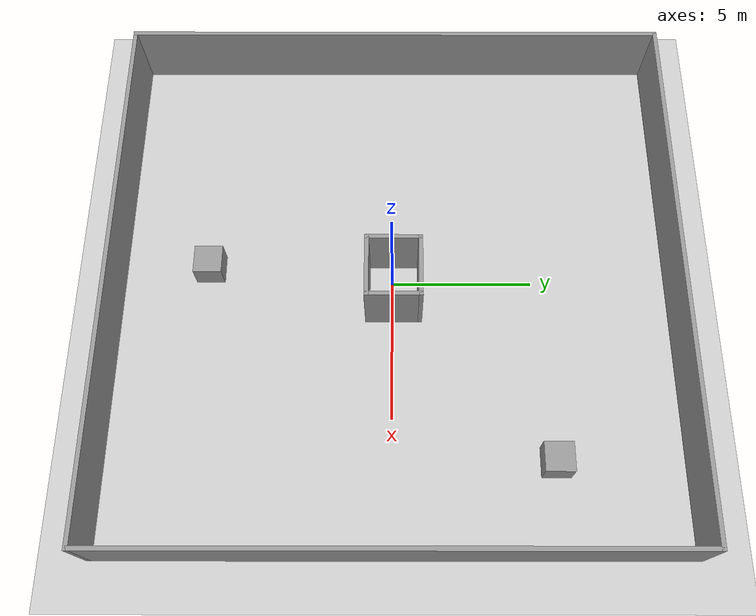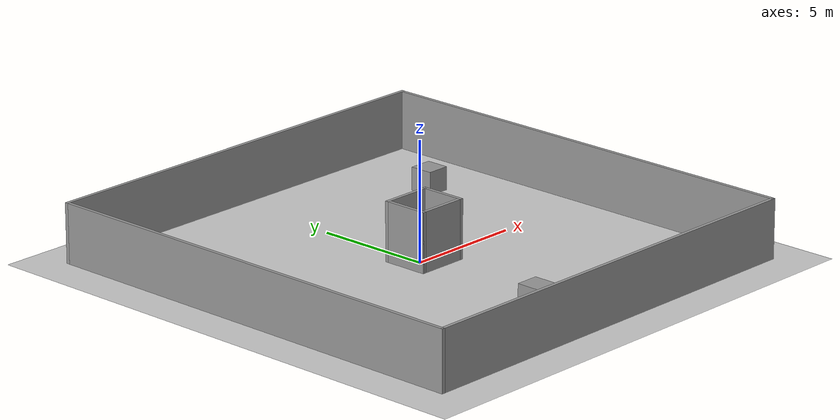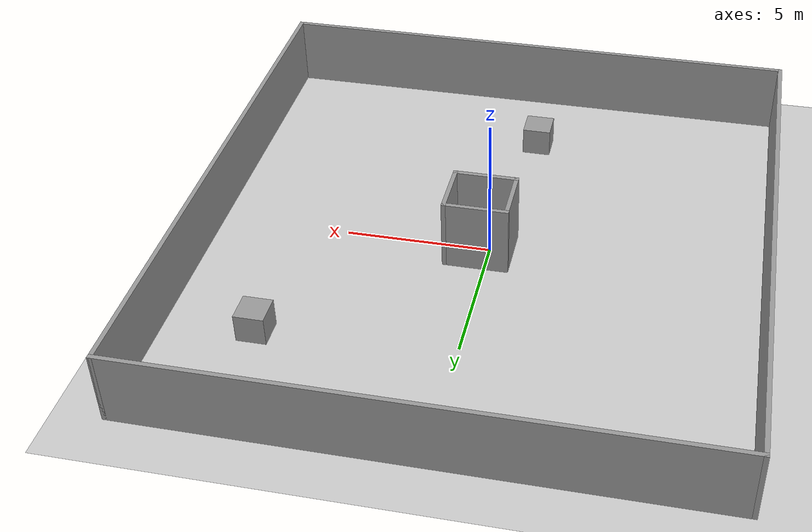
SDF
<sdf version="1.7">
 <world name="default">
  <light name="sun" type="directional">
   <pose>0 0 10 0 -0 0</pose>
   <diffuse>0.8 0.8 0.8 1</diffuse>
   <specular>0.2 0.2 0.2 1</specular>
   <attenuation>
    <range>1000</range>
    <constant>0.9</constant>
    <linear>0.01</linear>
    <quadratic>0.001</quadratic>
   </attenuation>
   <direction>-0.5 0.1 -0.9</direction>
   <spot><inner_angle>0</inner_angle><outer_angle>0</outer_angle><falloff>0</falloff></spot>
  </light>
  <model name="ground_plane">
   <static>1</static>
   <link name="link">
    <collision name="collision">
     <geometry><plane><normal>0 0 1</normal><size>100 100</size></plane></geometry>
     <surface>
      <contact><collide_bitmask>65535</collide_bitmask></contact>
      <friction><ode><mu>100</mu><mu2>50</mu2></ode></friction>
     </surface>
    </collision>
    <visual name="visual">
     <cast_shadows>0</cast_shadows>
     <geometry><plane><normal>0 0 1</normal><size>100 100</size></plane></geometry>
     <material>
      <script><uri>file://media/materials/scripts/gazebo.material</uri><name>Gazebo/Grey</name></script>
     </material>
    </visual>
   </link>
  </model>
  <gravity>0 0 -9.8</gravity>
  <magnetic_field>6e-06 2.3e-05 -4.2e-05</magnetic_field>
  <atmosphere type="adiabatic"/>
  <physics type="ode">
   <max_step_size>0.001</max_step_size>
   <real_time_factor>1</real_time_factor>
   <real_time_update_rate>1000</real_time_update_rate>
  </physics>
  <scene><ambient>0.4 0.4 0.4 1</ambient><background>0.7 0.7 0.7 1</background><shadows>1</shadows></scene>
  <spherical_coordinates>
   <surface_model>EARTH_WGS84</surface_model>
   <latitude_deg>0</latitude_deg>
   <longitude_deg>0</longitude_deg>
   <elevation>0</elevation>
   <heading_deg>0</heading_deg>
  </spherical_coordinates>
  <model name="lagreh">
   <pose>0.159052 0.094682 0 0 -0 0</pose>
   <link name="Wall_12">
    <collision name="Wall_12_Collision">
     <geometry><box><size>19.75 0.15 2.5</size></box></geometry>
     <pose>0 0 1.25 0 -0 0</pose>
    </collision>
    <visual name="Wall_12_Visual">
     <pose>0 0 1.25 0 -0 0</pose>
     <geometry><box><size>19.75 0.15 2.5</size></box></geometry>
     <material>
      <script><uri>file://media/materials/scripts/gazebo.material</uri><name>Gazebo/Grey</name></script>
      <ambient>1 1 1 1</ambient>
     </material>
     <meta><layer>0</layer></meta>
    </visual>
    <pose>-9.425 0 0 0 -0 -1.5708</pose>
   </link>
   <link name="Wall_14">
    <collision name="Wall_14_Collision">
     <geometry><box><size>19 0.15 2.5</size></box></geometry>
     <pose>0 0 1.25 0 -0 0</pose>
    </collision>
    <visual name="Wall_14_Visual">
     <pose>0 0 1.25 0 -0 0</pose>
     <geometry><box><size>19 0.15 2.5</size></box></geometry>
     <material>
      <script><uri>file://media/materials/scripts/gazebo.material</uri><name>Gazebo/Grey</name></script>
      <ambient>1 1 1 1</ambient>
     </material>
     <meta><layer>0</layer></meta>
    </visual>
    <pose>-0 9.8 0 0 -0 0</pose>
   </link>
   <link name="Wall_15">
    <collision name="Wall_15_Collision">
     <geometry><box><size>19.75 0.15 2.5</size></box></geometry>
     <pose>0 0 1.25 0 -0 0</pose>
    </collision>
    <visual name="Wall_15_Visual">
     <pose>0 0 1.25 0 -0 0</pose>
     <geometry><box><size>19.75 0.15 2.5</size></box></geometry>
     <material>
      <script><uri>file://media/materials/scripts/gazebo.material</uri><name>Gazebo/Grey</name></script>
      <ambient>1 1 1 1</ambient>
     </material>
     <meta><layer>0</layer></meta>
    </visual>
    <pose>9.425 0 0 0 -0 -1.5708</pose>
   </link>
   <link name="Wall_16">
    <collision name="Wall_16_Collision">
     <geometry><box><size>19 0.15 2.5</size></box></geometry>
     <pose>0 0 1.25 0 -0 0</pose>
    </collision>
    <visual name="Wall_16_Visual">
     <pose>0 0 1.25 0 -0 0</pose>
     <geometry><box><size>19 0.15 2.5</size></box></geometry>
     <material>
      <script><uri>file://media/materials/scripts/gazebo.material</uri><name>Gazebo/Grey</name></script>
      <ambient>1 1 1 1</ambient>
     </material>
     <meta><layer>0</layer></meta>
    </visual>
    <pose>-0 -9.8 0 0 -0 3.14159</pose>
   </link>
   <link name="Wall_23">
    <collision name="Wall_23_Collision">
     <geometry><box><size>2.25 0.15 2.5</size></box></geometry>
     <pose>0 0 1.25 0 -0 0</pose>
    </collision>
    <visual name="Wall_23_Visual">
     <pose>0 0 1.25 0 -0 0</pose>
     <geometry><box><size>2.25 0.15 2.5</size></box></geometry>
     <material>
      <script><uri>file://media/materials/scripts/gazebo.material</uri><name>Gazebo/Grey</name></script>
      <ambient>1 1 1 1</ambient>
     </material>
     <meta><layer>0</layer></meta>
    </visual>
    <pose>0.15457 -0.966414 0 0 -0 0</pose>
   </link>
   <link name="Wall_28">
    <collision name="Wall_28_Collision">
     <geometry><box><size>2 0.15 2.5</size></box></geometry>
     <pose>0 0 1.25 0 -0 0</pose>
    </collision>
    <visual name="Wall_28_Visual">
     <pose>0 0 1.25 0 -0 0</pose>
     <geometry><box><size>2 0.15 2.5</size></box></geometry>
     <material>
      <script><uri>file://media/materials/scripts/gazebo.material</uri><name>Gazebo/Grey</name></script>
      <ambient>1 1 1 1</ambient>
     </material>
     <meta><layer>0</layer></meta>
    </visual>
    <pose>1.20457 -0.041414 0 0 -0 1.5708</pose>
   </link>
   <link name="Wall_29">
    <collision name="Wall_29_Collision">
     <geometry><box><size>2.25 0.15 2.5</size></box></geometry>
     <pose>0 0 1.25 0 -0 0</pose>
    </collision>
    <visual name="Wall_29_Visual">
     <pose>0 0 1.25 0 -0 0</pose>
     <geometry><box><size>2.25 0.15 2.5</size></box></geometry>
     <material>
      <script><uri>file://media/materials/scripts/gazebo.material</uri><name>Gazebo/Grey</name></script>
      <ambient>1 1 1 1</ambient>
     </material>
     <meta><layer>0</layer></meta>
    </visual>
    <pose>0.15457 0.883586 0 0 -0 3.14159</pose>
   </link>
   <link name="Wall_30">
    <collision name="Wall_30_Collision">
     <geometry><box><size>2 0.15 2.5</size></box></geometry>
     <pose>0 0 1.25 0 -0 0</pose>
    </collision>
    <visual name="Wall_30_Visual">
     <pose>0 0 1.25 0 -0 0</pose>
     <geometry><box><size>2 0.15 2.5</size></box></geometry>
     <material>
      <script><uri>file://media/materials/scripts/gazebo.material</uri><name>Gazebo/Grey</name></script>
      <ambient>1 1 1 1</ambient>
     </material>
     <meta><layer>0</layer></meta>
    </visual>
    <pose>-0.89543 -0.041414 0 0 -0 -1.5708</pose>
   </link>
   <static>1</static>
  </model>
  <model name="unit_box">
   <pose>6.47362 5.47882 0.499995 -1e-05 -0 0</pose>
   <link name="link">
    <inertial>
     <mass>1</mass>
     <inertia>
      <ixx>0.166667</ixx>
      <ixy>0</ixy>
      <ixz>0</ixz>
      <iyy>0.166667</iyy>
      <iyz>0</iyz>
      <izz>0.166667</izz>
     </inertia>
    </inertial>
    <collision name="collision"><geometry><box><size>1 1 1</size></box></geometry></collision>
    <visual name="visual">
     <geometry><box><size>1 1 1</size></box></geometry>
     <material>
      <script><name>Gazebo/Grey</name><uri>file://media/materials/scripts/gazebo.material</uri></script>
     </material>
    </visual>
   </link>
  </model>
  <model name="unit_box_0">
   <pose>-0.586703 -6.5512 0.5 0 -0 0</pose>
   <link name="link">
    <inertial>
     <mass>1</mass>
     <inertia>
      <ixx>0.166667</ixx>
      <ixy>0</ixy>
      <ixz>0</ixz>
      <iyy>0.166667</iyy>
      <iyz>0</iyz>
      <izz>0.166667</izz>
     </inertia>
    </inertial>
    <collision name="collision"><geometry><box><size>1 1 1</size></box></geometry></collision>
    <visual name="visual">
     <geometry><box><size>1 1 1</size></box></geometry>
     <material>
      <script><name>Gazebo/Grey</name><uri>file://media/materials/scripts/gazebo.material</uri></script>
     </material>
    </visual>
   </link>
  </model>
 </world>
</sdf>
